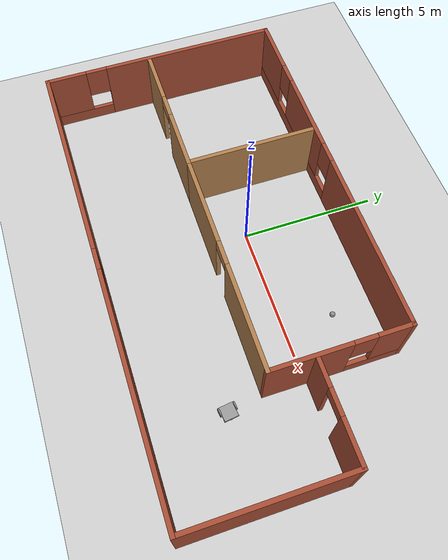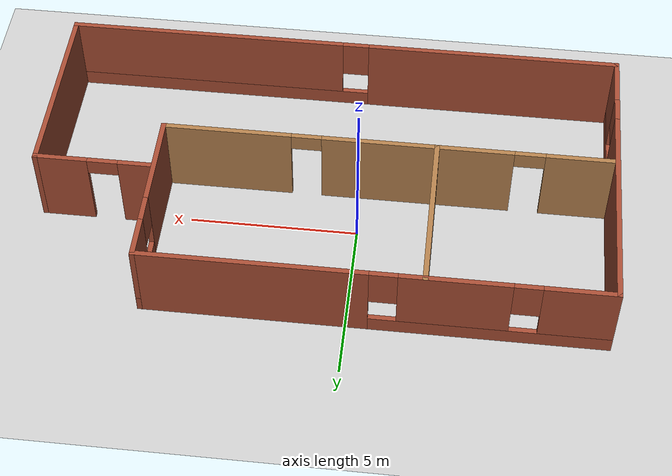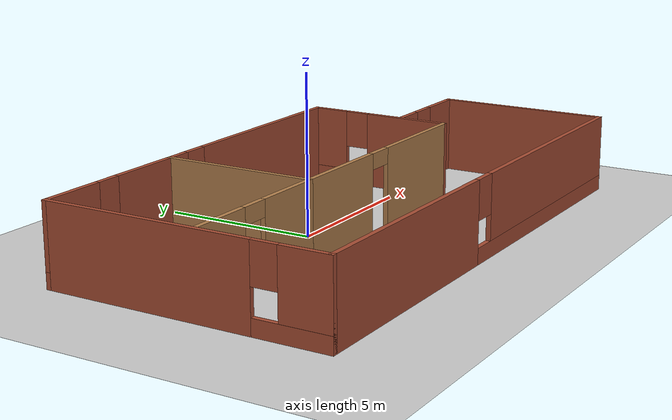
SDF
<sdf version="1.6">
 <world name="default">
  <model name="ground_plane">
   <static>1</static>
   <link name="link">
    <collision name="collision">
     <geometry><plane><normal>0 0 1</normal><size>100 100</size></plane></geometry>
     <surface>
      <contact><collide_bitmask>65535</collide_bitmask></contact>
      <friction><ode><mu>100</mu><mu2>50</mu2></ode></friction>
     </surface>
    </collision>
    <visual name="visual">
     <cast_shadows>0</cast_shadows>
     <geometry><plane><normal>0 0 1</normal><size>100 100</size></plane></geometry>
     <material>
      <script><uri>file://media/materials/scripts/gazebo.material</uri><name>Gazebo/Grey</name></script>
     </material>
    </visual>
   </link>
  </model>
  <model name="guilyx_env">
   <pose>0.99065 -1.04961 0 0 -0 0</pose>
   <link name="Wall_0">
    <pose>0.875 -0.425 0 0 -0 0</pose>
    <visual name="Wall_0_Visual_0">
     <pose>-2.38969 0 1.25 0 -0 0</pose>
     <geometry><box><size>3.47062 0.15 2.5</size></box></geometry>
     <material>
      <script><uri>file://media/materials/scripts/gazebo.material</uri><name>Gazebo/Wood</name></script>
      <ambient>1 1 1 1</ambient>
     </material>
     <meta><layer>0</layer></meta>
    </visual>
    <collision name="Wall_0_Collision_0">
     <geometry><box><size>3.47062 0.15 2.5</size></box></geometry>
     <pose>-2.38969 0 1.25 0 -0 0</pose>
    </collision>
    <visual name="Wall_0_Visual_1">
     <pose>2.18531 0 1.25 0 -0 0</pose>
     <geometry><box><size>3.87938 0.15 2.5</size></box></geometry>
     <material>
      <script><uri>file://media/materials/scripts/gazebo.material</uri><name>Gazebo/Wood</name></script>
      <ambient>1 1 1 1</ambient>
     </material>
     <meta><layer>0</layer></meta>
    </visual>
    <collision name="Wall_0_Collision_1">
     <geometry><box><size>3.87938 0.15 2.5</size></box></geometry>
     <pose>2.18531 0 1.25 0 -0 0</pose>
    </collision>
    <visual name="Wall_0_Visual_2">
     <pose>-0.204381 0 2.25 0 -0 0</pose>
     <geometry><box><size>0.9 0.15 0.5</size></box></geometry>
     <material>
      <script><uri>file://media/materials/scripts/gazebo.material</uri><name>Gazebo/Wood</name></script>
      <ambient>1 1 1 1</ambient>
     </material>
     <meta><layer>0</layer></meta>
    </visual>
    <collision name="Wall_0_Collision_2">
     <geometry><box><size>0.9 0.15 0.5</size></box></geometry>
     <pose>-0.204381 0 2.25 0 -0 0</pose>
    </collision>
   </link>
   <link name="Wall_1">
    <pose>4.925 2 0 0 -0 1.5708</pose>
    <visual name="Wall_1_Visual_0">
     <pose>-1.04262 0 1.25 0 -0 0</pose>
     <geometry><box><size>2.91477 0.15 2.5</size></box></geometry>
     <material>
      <script><uri>file://media/materials/scripts/gazebo.material</uri><name>Gazebo/Bricks</name></script>
      <ambient>1 1 1 1</ambient>
     </material>
     <meta><layer>0</layer></meta>
    </visual>
    <collision name="Wall_1_Collision_0">
     <geometry><box><size>2.91477 0.15 2.5</size></box></geometry>
     <pose>-1.04262 0 1.25 0 -0 0</pose>
    </collision>
    <visual name="Wall_1_Visual_1">
     <pose>1.45738 0 0.25 0 -0 0</pose>
     <geometry><box><size>2.08523 0.15 0.5</size></box></geometry>
     <material>
      <script><uri>file://media/materials/scripts/gazebo.material</uri><name>Gazebo/Bricks</name></script>
      <ambient>1 1 1 1</ambient>
     </material>
     <meta><layer>0</layer></meta>
    </visual>
    <collision name="Wall_1_Collision_1">
     <geometry><box><size>2.08523 0.15 0.5</size></box></geometry>
     <pose>1.45738 0 0.25 0 -0 0</pose>
    </collision>
    <visual name="Wall_1_Visual_2">
     <pose>1.85739 0 1.5 0 -0 0</pose>
     <geometry><box><size>1.28523 0.15 2</size></box></geometry>
     <material>
      <script><uri>file://media/materials/scripts/gazebo.material</uri><name>Gazebo/Bricks</name></script>
      <ambient>1 1 1 1</ambient>
     </material>
     <meta><layer>0</layer></meta>
    </visual>
    <collision name="Wall_1_Collision_2">
     <geometry><box><size>1.28523 0.15 2</size></box></geometry>
     <pose>1.85739 0 1.5 0 -0 0</pose>
    </collision>
    <visual name="Wall_1_Visual_3">
     <pose>0.814769 0 1.9 0 -0 0</pose>
     <geometry><box><size>0.8 0.15 1.2</size></box></geometry>
     <material>
      <script><uri>file://media/materials/scripts/gazebo.material</uri><name>Gazebo/Bricks</name></script>
      <ambient>1 1 1 1</ambient>
     </material>
     <meta><layer>0</layer></meta>
    </visual>
    <collision name="Wall_1_Collision_3">
     <geometry><box><size>0.8 0.15 1.2</size></box></geometry>
     <pose>0.814769 0 1.9 0 -0 0</pose>
    </collision>
   </link>
   <link name="Wall_10">
    <pose>-5.725 -0.425 0 0 -0 3.14159</pose>
    <visual name="Wall_10_Visual_0">
     <pose>-1.45537 0 1.25 0 -0 0</pose>
     <geometry><box><size>2.33925 0.15 2.5</size></box></geometry>
     <material>
      <script><uri>file://media/materials/scripts/gazebo.material</uri><name>Gazebo/Wood</name></script>
      <ambient>1 1 1 1</ambient>
     </material>
     <meta><layer>0</layer></meta>
    </visual>
    <collision name="Wall_10_Collision_0">
     <geometry><box><size>2.33925 0.15 2.5</size></box></geometry>
     <pose>-1.45537 0 1.25 0 -0 0</pose>
    </collision>
    <visual name="Wall_10_Visual_1">
     <pose>1.61963 0 1.25 0 -0 0</pose>
     <geometry><box><size>2.01075 0.15 2.5</size></box></geometry>
     <material>
      <script><uri>file://media/materials/scripts/gazebo.material</uri><name>Gazebo/Wood</name></script>
      <ambient>1 1 1 1</ambient>
     </material>
     <meta><layer>0</layer></meta>
    </visual>
    <collision name="Wall_10_Collision_1">
     <geometry><box><size>2.01075 0.15 2.5</size></box></geometry>
     <pose>1.61963 0 1.25 0 -0 0</pose>
    </collision>
    <visual name="Wall_10_Visual_2">
     <pose>0.164253 0 2.25 0 -0 0</pose>
     <geometry><box><size>0.9 0.15 0.5</size></box></geometry>
     <material>
      <script><uri>file://media/materials/scripts/gazebo.material</uri><name>Gazebo/Wood</name></script>
      <ambient>1 1 1 1</ambient>
     </material>
     <meta><layer>0</layer></meta>
    </visual>
    <collision name="Wall_10_Collision_2">
     <geometry><box><size>0.9 0.15 0.5</size></box></geometry>
     <pose>0.164253 0 2.25 0 -0 0</pose>
    </collision>
   </link>
   <link name="Wall_2">
    <pose>-1.75 4.425 0 0 -0 3.14159</pose>
    <visual name="Wall_2_Visual_0">
     <pose>-3.43612 0 1.25 0 -0 0</pose>
     <geometry><box><size>6.62777 0.15 2.5</size></box></geometry>
     <material>
      <script><uri>file://media/materials/scripts/gazebo.material</uri><name>Gazebo/Bricks</name></script>
      <ambient>1 1 1 1</ambient>
     </material>
     <meta><layer>0</layer></meta>
    </visual>
    <collision name="Wall_2_Collision_0">
     <geometry><box><size>6.62777 0.15 2.5</size></box></geometry>
     <pose>-3.43612 0 1.25 0 -0 0</pose>
    </collision>
    <visual name="Wall_2_Visual_1">
     <pose>3.31388 0 0.25 0 -0 0</pose>
     <geometry><box><size>6.87223 0.15 0.5</size></box></geometry>
     <material>
      <script><uri>file://media/materials/scripts/gazebo.material</uri><name>Gazebo/Bricks</name></script>
      <ambient>1 1 1 1</ambient>
     </material>
     <meta><layer>0</layer></meta>
    </visual>
    <collision name="Wall_2_Collision_1">
     <geometry><box><size>6.87223 0.15 0.5</size></box></geometry>
     <pose>3.31388 0 0.25 0 -0 0</pose>
    </collision>
    <visual name="Wall_2_Visual_2">
     <pose>2.25503 0 1.5 0 -0 0</pose>
     <geometry><box><size>3.15453 0.15 2</size></box></geometry>
     <material>
      <script><uri>file://media/materials/scripts/gazebo.material</uri><name>Gazebo/Bricks</name></script>
      <ambient>1 1 1 1</ambient>
     </material>
     <meta><layer>0</layer></meta>
    </visual>
    <collision name="Wall_2_Collision_2">
     <geometry><box><size>3.15453 0.15 2</size></box></geometry>
     <pose>2.25503 0 1.5 0 -0 0</pose>
    </collision>
    <visual name="Wall_2_Visual_3">
     <pose>5.69115 0 1.5 0 -0 0</pose>
     <geometry><box><size>2.1177 0.15 2</size></box></geometry>
     <material>
      <script><uri>file://media/materials/scripts/gazebo.material</uri><name>Gazebo/Bricks</name></script>
      <ambient>1 1 1 1</ambient>
     </material>
     <meta><layer>0</layer></meta>
    </visual>
    <collision name="Wall_2_Collision_3">
     <geometry><box><size>2.1177 0.15 2</size></box></geometry>
     <pose>5.69115 0 1.5 0 -0 0</pose>
    </collision>
    <visual name="Wall_2_Visual_4">
     <pose>0.277768 0 1.9 0 -0 0</pose>
     <geometry><box><size>0.8 0.15 1.2</size></box></geometry>
     <material>
      <script><uri>file://media/materials/scripts/gazebo.material</uri><name>Gazebo/Bricks</name></script>
      <ambient>1 1 1 1</ambient>
     </material>
     <meta><layer>0</layer></meta>
    </visual>
    <collision name="Wall_2_Collision_4">
     <geometry><box><size>0.8 0.15 1.2</size></box></geometry>
     <pose>0.277768 0 1.9 0 -0 0</pose>
    </collision>
    <visual name="Wall_2_Visual_5">
     <pose>4.2323 0 1.9 0 -0 0</pose>
     <geometry><box><size>0.8 0.15 1.2</size></box></geometry>
     <material>
      <script><uri>file://media/materials/scripts/gazebo.material</uri><name>Gazebo/Bricks</name></script>
      <ambient>1 1 1 1</ambient>
     </material>
     <meta><layer>0</layer></meta>
    </visual>
    <collision name="Wall_2_Collision_5">
     <geometry><box><size>0.8 0.15 1.2</size></box></geometry>
     <pose>4.2323 0 1.9 0 -0 0</pose>
    </collision>
   </link>
   <link name="Wall_3">
    <pose>-8.425 0 0 0 -0 -1.5708</pose>
    <visual name="Wall_3_Visual_0">
     <pose>-1.18226 0 1.25 0 -0 0</pose>
     <geometry><box><size>6.63548 0.15 2.5</size></box></geometry>
     <material>
      <script><uri>file://media/materials/scripts/gazebo.material</uri><name>Gazebo/Bricks</name></script>
      <ambient>1 1 1 1</ambient>
     </material>
     <meta><layer>0</layer></meta>
    </visual>
    <collision name="Wall_3_Collision_0">
     <geometry><box><size>6.63548 0.15 2.5</size></box></geometry>
     <pose>-1.18226 0 1.25 0 -0 0</pose>
    </collision>
    <visual name="Wall_3_Visual_1">
     <pose>3.31774 0 0.25 0 -0 0</pose>
     <geometry><box><size>2.36452 0.15 0.5</size></box></geometry>
     <material>
      <script><uri>file://media/materials/scripts/gazebo.material</uri><name>Gazebo/Bricks</name></script>
      <ambient>1 1 1 1</ambient>
     </material>
     <meta><layer>0</layer></meta>
    </visual>
    <collision name="Wall_3_Collision_1">
     <geometry><box><size>2.36452 0.15 0.5</size></box></geometry>
     <pose>3.31774 0 0.25 0 -0 0</pose>
    </collision>
    <visual name="Wall_3_Visual_2">
     <pose>3.71774 0 1.5 0 -0 0</pose>
     <geometry><box><size>1.56452 0.15 2</size></box></geometry>
     <material>
      <script><uri>file://media/materials/scripts/gazebo.material</uri><name>Gazebo/Bricks</name></script>
      <ambient>1 1 1 1</ambient>
     </material>
     <meta><layer>0</layer></meta>
    </visual>
    <collision name="Wall_3_Collision_2">
     <geometry><box><size>1.56452 0.15 2</size></box></geometry>
     <pose>3.71774 0 1.5 0 -0 0</pose>
    </collision>
    <visual name="Wall_3_Visual_3">
     <pose>2.53548 0 1.9 0 -0 0</pose>
     <geometry><box><size>0.8 0.15 1.2</size></box></geometry>
     <material>
      <script><uri>file://media/materials/scripts/gazebo.material</uri><name>Gazebo/Bricks</name></script>
      <ambient>1 1 1 1</ambient>
     </material>
     <meta><layer>0</layer></meta>
    </visual>
    <collision name="Wall_3_Collision_3">
     <geometry><box><size>0.8 0.15 1.2</size></box></geometry>
     <pose>2.53548 0 1.9 0 -0 0</pose>
    </collision>
   </link>
   <link name="Wall_4">
    <pose>-0 -4.425 0 0 -0 0</pose>
    <visual name="Wall_4_Visual_0">
     <pose>-4.64971 0 1.25 0 -0 0</pose>
     <geometry><box><size>7.70057 0.15 2.5</size></box></geometry>
     <material>
      <script><uri>file://media/materials/scripts/gazebo.material</uri><name>Gazebo/Bricks</name></script>
      <ambient>1 1 1 1</ambient>
     </material>
     <meta><layer>0</layer></meta>
    </visual>
    <collision name="Wall_4_Collision_0">
     <geometry><box><size>7.70057 0.15 2.5</size></box></geometry>
     <pose>-4.64971 0 1.25 0 -0 0</pose>
    </collision>
    <visual name="Wall_4_Visual_1">
     <pose>3.85028 0 0.25 0 -0 0</pose>
     <geometry><box><size>9.29943 0.15 0.5</size></box></geometry>
     <material>
      <script><uri>file://media/materials/scripts/gazebo.material</uri><name>Gazebo/Bricks</name></script>
      <ambient>1 1 1 1</ambient>
     </material>
     <meta><layer>0</layer></meta>
    </visual>
    <collision name="Wall_4_Collision_1">
     <geometry><box><size>9.29943 0.15 0.5</size></box></geometry>
     <pose>3.85028 0 0.25 0 -0 0</pose>
    </collision>
    <visual name="Wall_4_Visual_2">
     <pose>4.25028 0 1.5 0 -0 0</pose>
     <geometry><box><size>8.49943 0.15 2</size></box></geometry>
     <material>
      <script><uri>file://media/materials/scripts/gazebo.material</uri><name>Gazebo/Bricks</name></script>
      <ambient>1 1 1 1</ambient>
     </material>
     <meta><layer>0</layer></meta>
    </visual>
    <collision name="Wall_4_Collision_2">
     <geometry><box><size>8.49943 0.15 2</size></box></geometry>
     <pose>4.25028 0 1.5 0 -0 0</pose>
    </collision>
    <visual name="Wall_4_Visual_3">
     <pose>-0.399431 0 1.9 0 -0 0</pose>
     <geometry><box><size>0.8 0.15 1.2</size></box></geometry>
     <material>
      <script><uri>file://media/materials/scripts/gazebo.material</uri><name>Gazebo/Bricks</name></script>
      <ambient>1 1 1 1</ambient>
     </material>
     <meta><layer>0</layer></meta>
    </visual>
    <collision name="Wall_4_Collision_3">
     <geometry><box><size>0.8 0.15 1.2</size></box></geometry>
     <pose>-0.399431 0 1.9 0 -0 0</pose>
    </collision>
   </link>
   <link name="Wall_5">
    <collision name="Wall_5_Collision">
     <geometry><box><size>5.75 0.15 2.5</size></box></geometry>
     <pose>0 0 1.25 0 -0 0</pose>
    </collision>
    <visual name="Wall_5_Visual">
     <pose>0 0 1.25 0 -0 0</pose>
     <geometry><box><size>5.75 0.15 2.5</size></box></geometry>
     <material>
      <script><uri>file://media/materials/scripts/gazebo.material</uri><name>Gazebo/Bricks</name></script>
      <ambient>1 1 1 1</ambient>
     </material>
     <meta><layer>0</layer></meta>
    </visual>
    <pose>8.425 -1.625 0 0 -0 1.5708</pose>
   </link>
   <link name="Wall_6">
    <pose>6.75 1.175 0 0 -0 3.14159</pose>
    <visual name="Wall_6_Visual_0">
     <pose>-0.944792 0 1.25 0 -0 0</pose>
     <geometry><box><size>1.61042 0.15 2.5</size></box></geometry>
     <material>
      <script><uri>file://media/materials/scripts/gazebo.material</uri><name>Gazebo/Bricks</name></script>
      <ambient>1 1 1 1</ambient>
     </material>
     <meta><layer>0</layer></meta>
    </visual>
    <collision name="Wall_6_Collision_0">
     <geometry><box><size>1.61042 0.15 2.5</size></box></geometry>
     <pose>-0.944792 0 1.25 0 -0 0</pose>
    </collision>
    <visual name="Wall_6_Visual_1">
     <pose>1.25521 0 1.25 0 -0 0</pose>
     <geometry><box><size>0.989584 0.15 2.5</size></box></geometry>
     <material>
      <script><uri>file://media/materials/scripts/gazebo.material</uri><name>Gazebo/Bricks</name></script>
      <ambient>1 1 1 1</ambient>
     </material>
     <meta><layer>0</layer></meta>
    </visual>
    <collision name="Wall_6_Collision_1">
     <geometry><box><size>0.989584 0.15 2.5</size></box></geometry>
     <pose>1.25521 0 1.25 0 -0 0</pose>
    </collision>
    <visual name="Wall_6_Visual_2">
     <pose>0.310416 0 2.25 0 -0 0</pose>
     <geometry><box><size>0.9 0.15 0.5</size></box></geometry>
     <material>
      <script><uri>file://media/materials/scripts/gazebo.material</uri><name>Gazebo/Bricks</name></script>
      <ambient>1 1 1 1</ambient>
     </material>
     <meta><layer>0</layer></meta>
    </visual>
    <collision name="Wall_6_Collision_2">
     <geometry><box><size>0.9 0.15 0.5</size></box></geometry>
     <pose>0.310416 0 2.25 0 -0 0</pose>
    </collision>
   </link>
   <link name="Wall_8">
    <collision name="Wall_8_Collision">
     <geometry><box><size>5 0.15 2.5</size></box></geometry>
     <pose>0 0 1.25 0 -0 0</pose>
    </collision>
    <visual name="Wall_8_Visual">
     <pose>0 0 1.25 0 -0 0</pose>
     <geometry><box><size>5 0.15 2.5</size></box></geometry>
     <material>
      <script><uri>file://media/materials/scripts/gazebo.material</uri><name>Gazebo/Wood</name></script>
      <ambient>1 1 1 1</ambient>
     </material>
     <meta><layer>0</layer></meta>
    </visual>
    <pose>-3.175 2 0 0 -0 1.5708</pose>
   </link>
   <static>1</static>
  </model>
  <model name="guilyx_wheeled_0">
   <link name="link_0_clone">
    <inertial>
     <mass>1</mass>
     <inertia>
      <ixx>0.166667</ixx>
      <ixy>0</ixy>
      <ixz>0</ixz>
      <iyy>0.166667</iyy>
      <iyz>0</iyz>
      <izz>0.166667</izz>
     </inertia>
    </inertial>
    <pose>-1e-06 1e-06 0.025 0 -0 0</pose>
    <visual name="visual">
     <geometry><box><size>0.5 0.5 0.1</size></box></geometry>
     <material>
      <lighting>1</lighting>
      <script><uri>file://media/materials/scripts/gazebo.material</uri><name>Gazebo/Grey</name></script>
      <shader type="vertex"><normal_map>__default__</normal_map></shader>
      <ambient>0.3 0.3 0.3 1</ambient>
      <diffuse>0.7 0.7 0.7 1</diffuse>
      <specular>0.01 0.01 0.01 1</specular>
      <emissive>0 0 0 1</emissive>
     </material>
    </visual>
    <collision name="collision">
     <geometry><box><size>0.5 0.5 0.1</size></box></geometry>
     <surface>
      <friction>
       <ode><mu>1</mu><mu2>1</mu2><fdir1>0 0 0</fdir1><slip1>0</slip1><slip2>0</slip2></ode>
       <torsional>
        <coefficient>1</coefficient>
        <patch_radius>0</patch_radius>
        <surface_radius>0</surface_radius>
        <use_patch_radius>1</use_patch_radius>
        <ode><slip>0</slip></ode>
       </torsional>
      </friction>
      <bounce><restitution_coefficient>0</restitution_coefficient><threshold>1e+06</threshold></bounce>
      <contact>
       <collide_without_contact>0</collide_without_contact>
       <collide_without_contact_bitmask>1</collide_without_contact_bitmask>
       <collide_bitmask>1</collide_bitmask>
       <ode>
        <soft_cfm>0</soft_cfm>
        <soft_erp>0.2</soft_erp>
        <kp>1e+13</kp>
        <kd>1</kd>
        <max_vel>0.01</max_vel>
        <min_depth>0</min_depth>
       </ode>
       <bullet>
        <split_impulse>1</split_impulse>
        <split_impulse_penetration_threshold>-0.01</split_impulse_penetration_threshold>
        <soft_cfm>0</soft_cfm>
        <soft_erp>0.2</soft_erp>
        <kp>1e+13</kp>
        <kd>1</kd>
       </bullet>
      </contact>
     </surface>
    </collision>
   </link>
   <link name="link_1_clone">
    <inertial>
     <mass>1</mass>
     <inertia><ixx>0.1</ixx><ixy>0</ixy><ixz>0</ixz><iyy>0.1</iyy><iyz>0</iyz><izz>0.1</izz></inertia>
    </inertial>
    <pose>0.200004 1e-06 -0.075 0 -0 0</pose>
    <visual name="visual">
     <geometry><sphere><radius>0.05</radius></sphere></geometry>
     <material>
      <lighting>1</lighting>
      <script><uri>file://media/materials/scripts/gazebo.material</uri><name>Gazebo/Grey</name></script>
      <shader type="vertex"><normal_map>__default__</normal_map></shader>
      <ambient>0.3 0.3 0.3 1</ambient>
      <diffuse>0.7 0.7 0.7 1</diffuse>
      <specular>0.01 0.01 0.01 1</specular>
      <emissive>0 0 0 1</emissive>
     </material>
    </visual>
    <collision name="collision">
     <geometry><sphere><radius>0.05</radius></sphere></geometry>
     <surface>
      <friction>
       <ode><mu>1</mu><mu2>1</mu2><fdir1>0 0 0</fdir1><slip1>0</slip1><slip2>0</slip2></ode>
       <torsional>
        <coefficient>1</coefficient>
        <patch_radius>0</patch_radius>
        <surface_radius>0</surface_radius>
        <use_patch_radius>1</use_patch_radius>
        <ode><slip>0</slip></ode>
       </torsional>
      </friction>
      <bounce><restitution_coefficient>0</restitution_coefficient><threshold>1e+06</threshold></bounce>
      <contact>
       <collide_without_contact>0</collide_without_contact>
       <collide_without_contact_bitmask>1</collide_without_contact_bitmask>
       <collide_bitmask>1</collide_bitmask>
       <ode>
        <soft_cfm>0</soft_cfm>
        <soft_erp>0.2</soft_erp>
        <kp>1e+13</kp>
        <kd>1</kd>
        <max_vel>0.01</max_vel>
        <min_depth>0</min_depth>
       </ode>
       <bullet>
        <split_impulse>1</split_impulse>
        <split_impulse_penetration_threshold>-0.01</split_impulse_penetration_threshold>
        <soft_cfm>0</soft_cfm>
        <soft_erp>0.2</soft_erp>
        <kp>1e+13</kp>
        <kd>1</kd>
       </bullet>
      </contact>
     </surface>
    </collision>
   </link>
   <link name="link_3_clone">
    <inertial>
     <mass>1</mass>
     <inertia><ixx>0.145833</ixx><ixy>0</ixy><ixz>0</ixz><iyy>0.145833</iyy><iyz>0</iyz><izz>0.125</izz></inertia>
    </inertial>
    <pose>-0.100001 0.275015 0.025 1.5707 -0 0</pose>
    <visual name="visual">
     <geometry><cylinder><radius>0.15</radius><length>0.05</length></cylinder></geometry>
     <material>
      <lighting>1</lighting>
      <script><uri>file://media/materials/scripts/gazebo.material</uri><name>Gazebo/Grey</name></script>
      <shader type="vertex"><normal_map>__default__</normal_map></shader>
      <ambient>0.3 0.3 0.3 1</ambient>
      <diffuse>0.7 0.7 0.7 1</diffuse>
      <specular>0.01 0.01 0.01 1</specular>
      <emissive>0 0 0 1</emissive>
     </material>
    </visual>
    <collision name="collision">
     <geometry><cylinder><radius>0.15</radius><length>0.05</length></cylinder></geometry>
     <surface>
      <friction>
       <ode><mu>1</mu><mu2>1</mu2><fdir1>0 0 0</fdir1><slip1>0</slip1><slip2>0</slip2></ode>
       <torsional>
        <coefficient>1</coefficient>
        <patch_radius>0</patch_radius>
        <surface_radius>0</surface_radius>
        <use_patch_radius>1</use_patch_radius>
        <ode><slip>0</slip></ode>
       </torsional>
      </friction>
      <bounce><restitution_coefficient>0</restitution_coefficient><threshold>1e+06</threshold></bounce>
      <contact>
       <collide_without_contact>0</collide_without_contact>
       <collide_without_contact_bitmask>1</collide_without_contact_bitmask>
       <collide_bitmask>1</collide_bitmask>
       <ode>
        <soft_cfm>0</soft_cfm>
        <soft_erp>0.2</soft_erp>
        <kp>1e+13</kp>
        <kd>1</kd>
        <max_vel>0.01</max_vel>
        <min_depth>0</min_depth>
       </ode>
       <bullet>
        <split_impulse>1</split_impulse>
        <split_impulse_penetration_threshold>-0.01</split_impulse_penetration_threshold>
        <soft_cfm>0</soft_cfm>
        <soft_erp>0.2</soft_erp>
        <kp>1e+13</kp>
        <kd>1</kd>
       </bullet>
      </contact>
     </surface>
    </collision>
   </link>
   <link name="link_3_clone_0">
    <inertial>
     <mass>1</mass>
     <inertia><ixx>0.145833</ixx><ixy>0</ixy><ixz>0</ixz><iyy>0.145833</iyy><iyz>0</iyz><izz>0.125</izz></inertia>
    </inertial>
    <pose>-0.100001 -0.275015 0.025 1.5707 -0 0</pose>
    <visual name="visual">
     <geometry><cylinder><radius>0.15</radius><length>0.05</length></cylinder></geometry>
     <material>
      <lighting>1</lighting>
      <script><uri>file://media/materials/scripts/gazebo.material</uri><name>Gazebo/Grey</name></script>
      <shader type="vertex"><normal_map>__default__</normal_map></shader>
      <ambient>0.3 0.3 0.3 1</ambient>
      <diffuse>0.7 0.7 0.7 1</diffuse>
      <specular>0.01 0.01 0.01 1</specular>
      <emissive>0 0 0 1</emissive>
     </material>
    </visual>
    <collision name="collision">
     <geometry><cylinder><radius>0.15</radius><length>0.05</length></cylinder></geometry>
     <surface>
      <friction>
       <ode><mu>1</mu><mu2>1</mu2><fdir1>0 0 0</fdir1><slip1>0</slip1><slip2>0</slip2></ode>
       <torsional>
        <coefficient>1</coefficient>
        <patch_radius>0</patch_radius>
        <surface_radius>0</surface_radius>
        <use_patch_radius>1</use_patch_radius>
        <ode><slip>0</slip></ode>
       </torsional>
      </friction>
      <bounce><restitution_coefficient>0</restitution_coefficient><threshold>1e+06</threshold></bounce>
      <contact>
       <collide_without_contact>0</collide_without_contact>
       <collide_without_contact_bitmask>1</collide_without_contact_bitmask>
       <collide_bitmask>1</collide_bitmask>
       <ode>
        <soft_cfm>0</soft_cfm>
        <soft_erp>0.2</soft_erp>
        <kp>1e+13</kp>
        <kd>1</kd>
        <max_vel>0.01</max_vel>
        <min_depth>0</min_depth>
       </ode>
       <bullet>
        <split_impulse>1</split_impulse>
        <split_impulse_penetration_threshold>-0.01</split_impulse_penetration_threshold>
        <soft_cfm>0</soft_cfm>
        <soft_erp>0.2</soft_erp>
        <kp>1e+13</kp>
        <kd>1</kd>
       </bullet>
      </contact>
     </surface>
    </collision>
   </link>
   <joint name="link_0_clone_JOINT_4" type="revolute">
    <parent>link_0_clone</parent>
    <child>link_3_clone_0</child>
    <axis>
     <xyz>0 0 1</xyz>
     <use_parent_model_frame>0</use_parent_model_frame>
     <limit>
      <lower>-1.79769e+308</lower>
      <upper>1.79769e+308</upper>
      <effort>-1</effort>
      <velocity>-1</velocity>
     </limit>
     <dynamics>
      <spring_reference>0</spring_reference>
      <spring_stiffness>0</spring_stiffness>
      <damping>0</damping>
     </dynamics>
    </axis>
    <physics>
     <ode><limit><cfm>0</cfm><erp>0.2</erp></limit><suspension><cfm>0</cfm><erp>0.2</erp></suspension></ode>
    </physics>
   </joint>
   <joint name="link_0_clone_JOINT_5" type="revolute">
    <parent>link_0_clone</parent>
    <child>link_3_clone</child>
    <axis>
     <xyz>0 0 1</xyz>
     <use_parent_model_frame>0</use_parent_model_frame>
     <limit>
      <lower>-1.79769e+308</lower>
      <upper>1.79769e+308</upper>
      <effort>-1</effort>
      <velocity>-1</velocity>
     </limit>
     <dynamics>
      <spring_reference>0</spring_reference>
      <spring_stiffness>0</spring_stiffness>
      <damping>0</damping>
     </dynamics>
    </axis>
    <physics>
     <ode><limit><cfm>0</cfm><erp>0.2</erp></limit><suspension><cfm>0</cfm><erp>0.2</erp></suspension></ode>
    </physics>
   </joint>
   <joint name="link_0_clone_JOINT_8" type="ball">
    <parent>link_0_clone</parent>
    <child>link_1_clone</child>
    <physics>
     <ode><limit><cfm>0</cfm><erp>0.2</erp></limit><suspension><cfm>0</cfm><erp>0.2</erp></suspension></ode>
    </physics>
   </joint>
   <static>0</static>
   <pose>6.12863 -2.74794 0.125001 0 4e-06 0.119991</pose>
  </model>
  <model name="myball">
   <link name="link_0_clone">
    <inertial>
     <mass>1</mass>
     <inertia><ixx>0.1</ixx><ixy>0</ixy><ixz>0</ixz><iyy>0.1</iyy><iyz>0</iyz><izz>0.1</izz></inertia>
    </inertial>
    <pose>-5e-06 -2e-06 0 0 -0 0</pose>
    <visual name="visual">
     <geometry><sphere><radius>0.1</radius></sphere></geometry>
     <material>
      <lighting>1</lighting>
      <script><uri>file://media/materials/scripts/gazebo.material</uri><name>Gazebo/Grey</name></script>
      <shader type="vertex"><normal_map>__default__</normal_map></shader>
      <ambient>1 1 1 1</ambient>
      <diffuse>1 1 1 1</diffuse>
      <specular>1 1 1 1</specular>
      <emissive>1 1 1 1</emissive>
     </material>
    </visual>
    <collision name="collision">
     <geometry><sphere><radius>0.1</radius></sphere></geometry>
     <surface>
      <friction>
       <ode><mu>1</mu><mu2>1</mu2><fdir1>0 0 0</fdir1><slip1>0</slip1><slip2>0</slip2></ode>
       <torsional>
        <coefficient>1</coefficient>
        <patch_radius>0</patch_radius>
        <surface_radius>0</surface_radius>
        <use_patch_radius>1</use_patch_radius>
        <ode><slip>0</slip></ode>
       </torsional>
      </friction>
      <bounce><restitution_coefficient>0</restitution_coefficient><threshold>1e+06</threshold></bounce>
      <contact>
       <collide_without_contact>0</collide_without_contact>
       <collide_without_contact_bitmask>1</collide_without_contact_bitmask>
       <collide_bitmask>1</collide_bitmask>
       <ode>
        <soft_cfm>0</soft_cfm>
        <soft_erp>0.2</soft_erp>
        <kp>1e+13</kp>
        <kd>1</kd>
        <max_vel>0.01</max_vel>
        <min_depth>0</min_depth>
       </ode>
       <bullet>
        <split_impulse>1</split_impulse>
        <split_impulse_penetration_threshold>-0.01</split_impulse_penetration_threshold>
        <soft_cfm>0</soft_cfm>
        <soft_erp>0.2</soft_erp>
        <kp>1e+13</kp>
        <kd>1</kd>
       </bullet>
      </contact>
     </surface>
    </collision>
   </link>
   <static>0</static>
   <pose>3.98796 1.81903 0.1 0 -0 0</pose>
  </model>
 </world>
</sdf>
